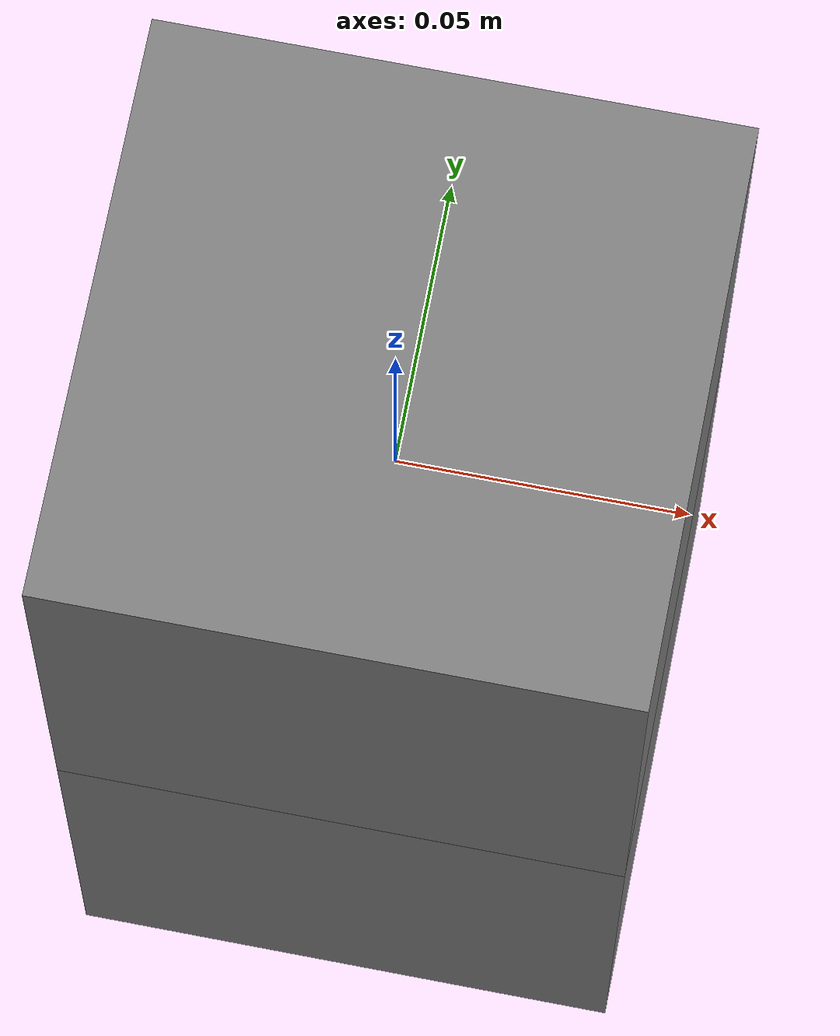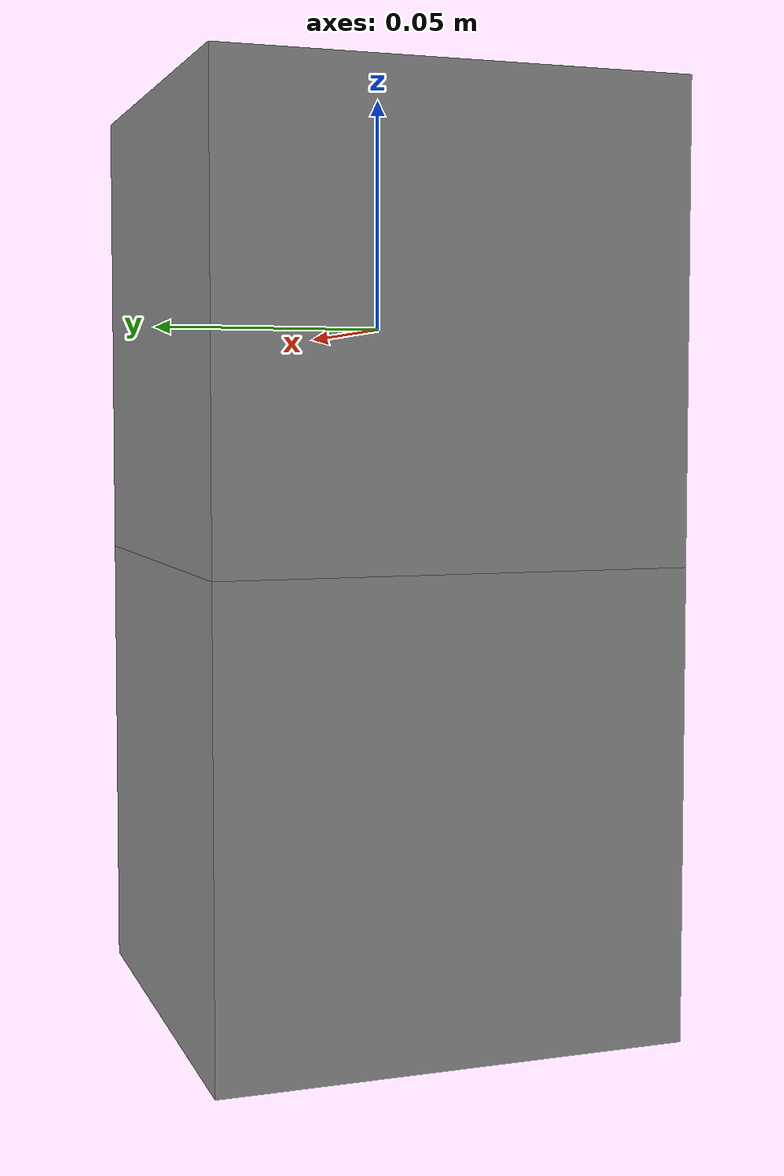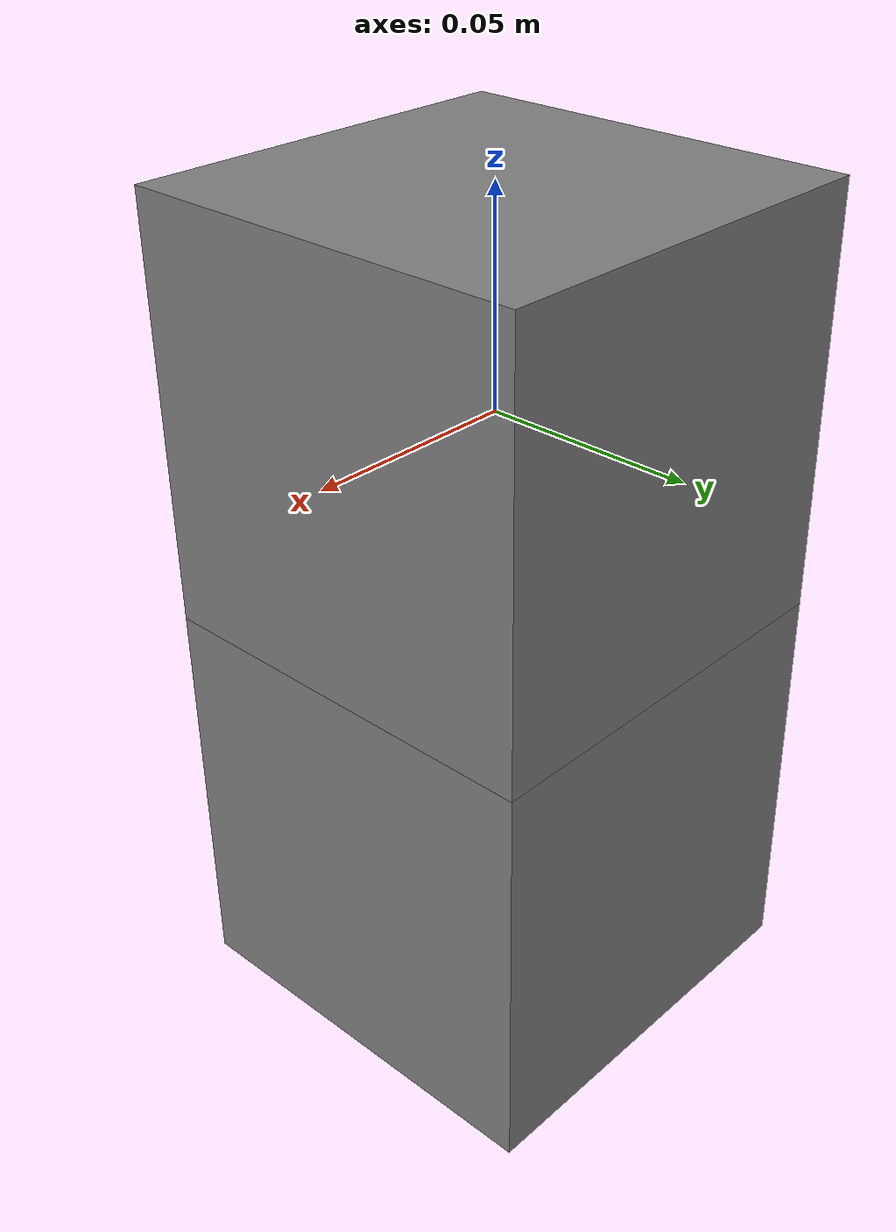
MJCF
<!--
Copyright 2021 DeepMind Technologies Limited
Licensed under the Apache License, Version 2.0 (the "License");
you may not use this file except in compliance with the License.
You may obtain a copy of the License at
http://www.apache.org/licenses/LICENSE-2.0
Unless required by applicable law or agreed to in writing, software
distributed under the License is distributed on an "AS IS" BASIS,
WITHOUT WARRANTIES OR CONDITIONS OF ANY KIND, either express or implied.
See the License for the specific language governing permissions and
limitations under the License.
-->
<mujoco>
  <!--
  body2 is held by body1 through the weld constraint, so the force sensor on body1
  should register -2*gravity (for the weight of both bodies).
  -->
  <option gravity="0 0 -1"/>

  <default>
    <!-- A cube of size 0.1^3 with density of 1000 has mass of 1. -->
    <geom size="0.05 0.05 0.05" type="box"/>
  </default>

  <worldbody>
    <body name="body1">
      <geom/>
      <site name="sensor"/>
    </body>
    <body name="body2" pos="0 0 -.1">
      <joint type="free"/>
      <geom/>
    </body>
  </worldbody>

  <equality>
    <weld body1="body1" body2="body2"/>
  </equality>

  <sensor>
    <force site="sensor" user="0 0 2"/>
    <torque site="sensor" user="0 0 0"/>
  </sensor>
</mujoco>
